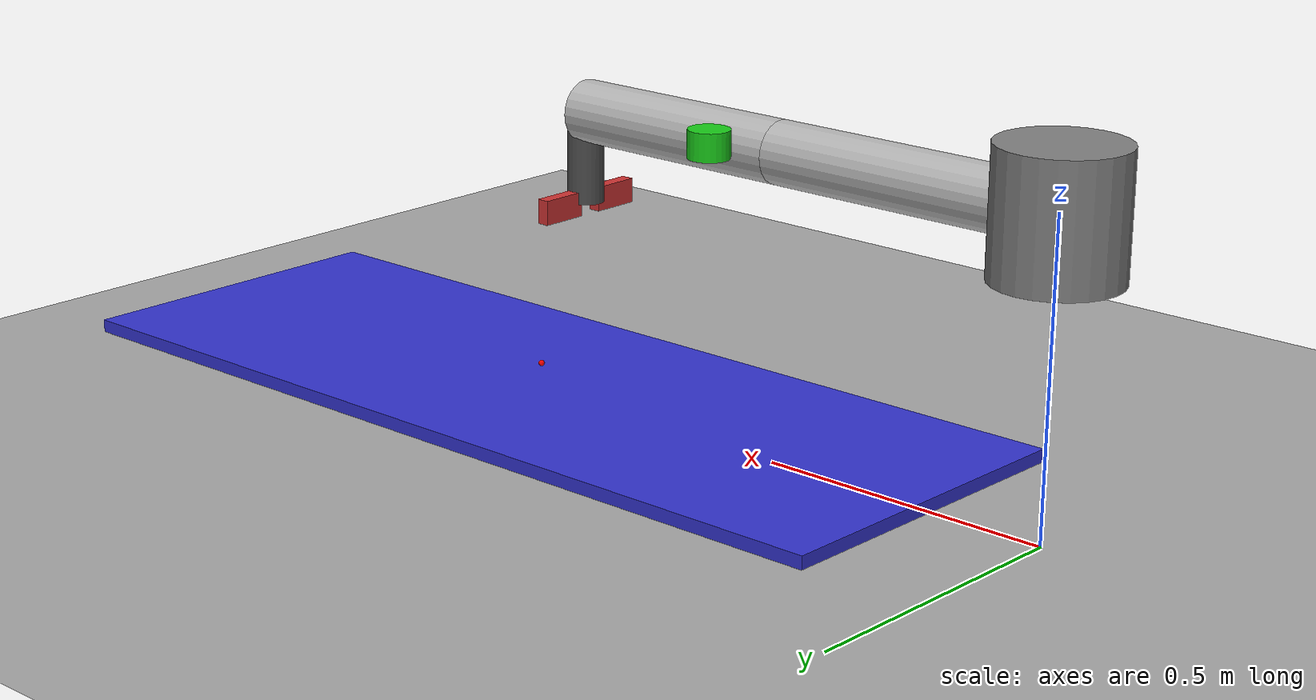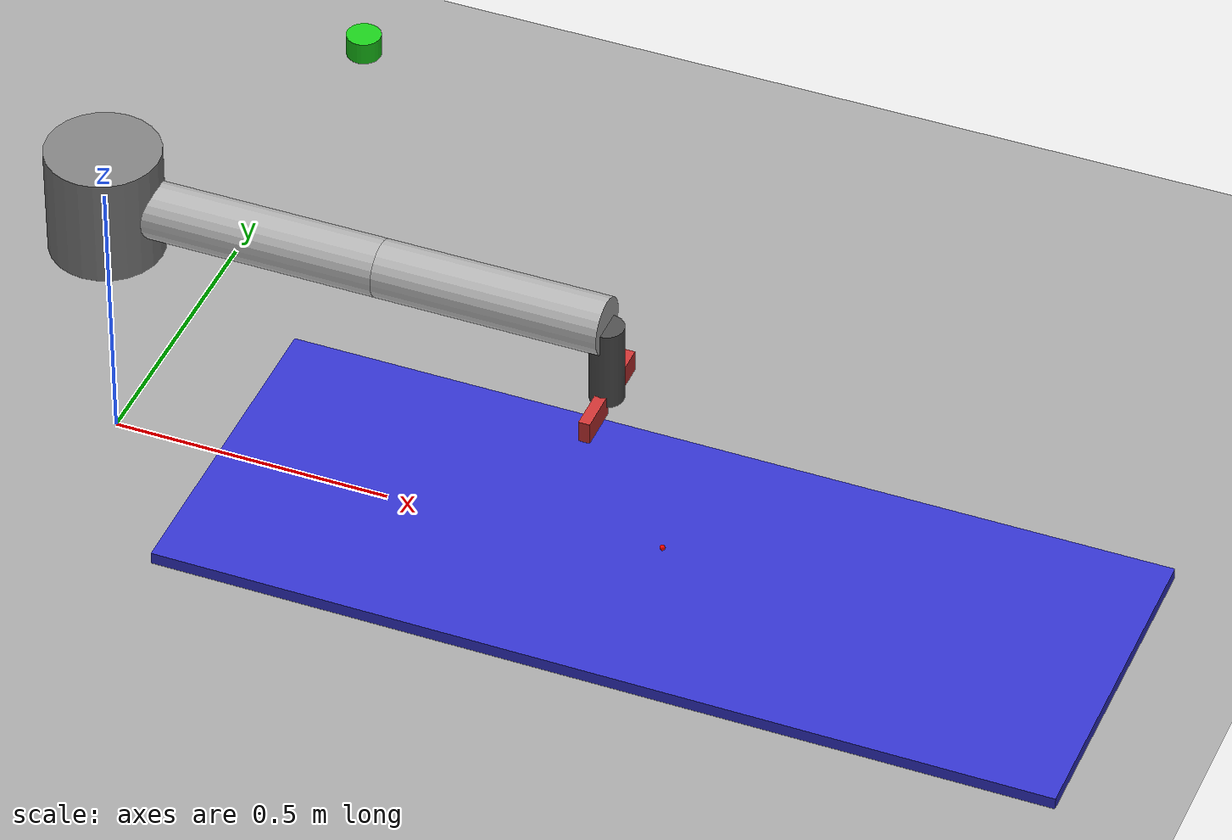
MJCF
<mujoco model="SCARA Robot - Stable Pick and Place">
  <compiler angle="radian" inertiafromgeom="true"/>
  <option timestep="0.002" gravity="0 0 -9.81" integrator="RK4" solver="PGS" iterations="100"/>

  <visual>
    <headlight diffuse="0.6 0.6 0.6" ambient="0.3 0.3 0.3"/>
  </visual>

  <asset>
    <texture type="2d" name="grid" builtin="checker" rgb1=".8 .8 .8" rgb2=".5 .5 .5" width="200" height="200"/>
    <material name="mat" texture="grid" texrepeat="10 10" texuniform="true"/>
    <material name="blue" rgba="0.2 0.2 0.8 1"/>
    <material name="red" rgba="0.8 0.2 0.2 1"/>
  </asset>

  <worldbody>
    <geom name="floor" type="plane" pos="0 0 0" size="2 2 0.1" material="mat" friction="0.8 0.1 0.1"/>

    <body name="conveyor_belt" pos="1.0 0 0">
      <geom name="belt" type="box" size="0.8 0.3 0.02" material="blue" contype="1" conaffinity="1"/>
    </body>

    <body name="base" pos="0 0 0.5">
      <geom name="base_geom" type="cylinder" size="0.1 0.1" rgba="0.5 0.5 0.5 1"/>

      <joint name="shoulder_joint" type="hinge" axis="0 0 1" pos="0 0 0" limited="true" range="-2.5 2.5"/>
      <body name="link1" pos="0 0 0">
        <geom name="link1_geom" type="cylinder" fromto="0 0 0 0.5 0 0" size="0.05" rgba="0.7 0.7 0.7 1"/>

        <joint name="elbow_joint" type="hinge" axis="0 0 1" pos="0.5 0 0" limited="true" range="-2.5 2.5"/>
        <body name="link2" pos="0.5 0 0">
          <geom name="link2_geom" type="cylinder" fromto="0 0 0 0.4 0 0" size="0.05" rgba="0.7 0.7 0.7 1"/>

          <joint name="z_joint" type="slide" axis="0 0 1" pos="0.4 0 0" limited="true" range="0.1 0.4"/>
          <body name="gripper_arm" pos="0.4 0 0">
            <geom name="gripper_arm_geom" type="cylinder" fromto="0 0 0 0 0 -0.15" size="0.03" rgba="0.3 0.3 0.3 1"/>

            <body name="gripper" pos="0 0 -0.15">
              <site name="gripper_contact" pos="0 0 -0.03" size="0.01" group="3"/>

              <joint name="gripper_open" type="slide" axis="1 0 0" limited="true" range="-0.04 0.04"/>

              <body name="left_finger_body" pos="0 -0.06 0">
                <geom name="left_finger" type="box" size="0.01 0.04 0.02" material="red"/>
              </body>

              <body name="right_finger_body" pos="0 0.06 0">
                <geom name="right_finger" type="box" size="0.01 0.04 0.02" material="red"/>
              </body>
            </body>
          </body>
        </body>
      </body>
    </body>

    <body name="part_to_move" pos="0.3 0.4 0.62">
      <geom name="part" type="cylinder" size="0.03 0.02" rgba="0.1 0.8 0.1 1" mass="0.1" contype="1" conaffinity="1"/>
      <freejoint name="part_joint"/>
    </body>

    <site name="target_place" pos="1.0 0 0.05" size="0.005" rgba="1 0 0 1"/>
  </worldbody>

  <!-- Actuators -->
  <actuator>
    <motor name="shoulder_motor" joint="shoulder_joint" gear="100" ctrlrange="-20 20"/>
    <motor name="elbow_motor" joint="elbow_joint" gear="100" ctrlrange="-20 20"/>
    <motor name="z_motor" joint="z_joint" gear="50" ctrlrange="-10 10"/>
    <motor name="gripper_motor" joint="gripper_open" gear="10" ctrlrange="-1 1"/>
  </actuator>

  <!-- Sensors -->
  <sensor>
    <jointpos name="shoulder_pos" joint="shoulder_joint"/>
    <jointpos name="elbow_pos" joint="elbow_joint"/>
    <jointpos name="z_pos" joint="z_joint"/>
    <framepos name="gripper_pos" objtype="site" objname="gripper_contact"/>
    <touch name="touch_sensor" site="gripper_contact"/>
  </sensor>
</mujoco>
